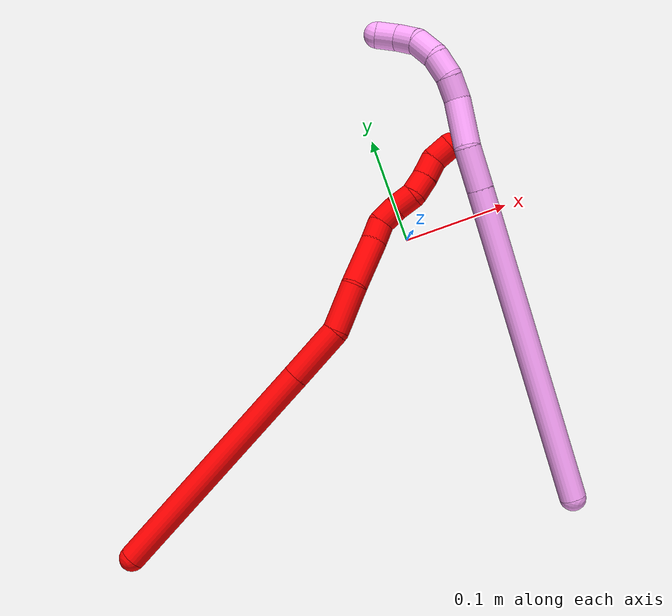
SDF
<sdf version="1.7">
 <world name="default">
  <model name="photoneo_s_sensor">
   <static>1</static>
   <pose>0 0 2 1.57079 1.57079 3.14159</pose>
   <link name="link">
    <inertial><mass>0.1</mass></inertial>
    <sensor name="sensor" type="depth">
     <update_rate>30</update_rate>
     <camera>
      <horizontal_fov>1.22</horizontal_fov>
      <image><width>1920</width><height>1200</height><format>B8G8R8</format></image>
      <clip><near>0.1</near><far>4</far></clip>
      <depth_camera><output>points</output></depth_camera>
     </camera>
     <plugin name="camera_plugin" filename="libgazebo_ros_depth_camera.so">
      <baseline>0.2</baseline>
      <alwaysOn>1</alwaysOn>
      <updateRate>0.0</updateRate>
      <cameraName>camera_ir</cameraName>
      <imageTopicName>/camera/color/image_raw</imageTopicName>
      <cameraInfoTopicName>/camera/color/camera_info</cameraInfoTopicName>
      <depthImageTopicName>/camera/depth/image_raw</depthImageTopicName>
      <depthImageCameraInfoTopicName>/camera/depth/camera_info</depthImageCameraInfoTopicName>
      <pointCloudTopicName>/camera/depth/points</pointCloudTopicName>
      <frameName>fr_optical</frameName>
      <pointCloudCutoff>0.1</pointCloudCutoff>
      <pointCloudCutoffMax>2.0</pointCloudCutoffMax>
      <distortionK1>0</distortionK1>
      <distortionK2>0</distortionK2>
      <distortionK3>0</distortionK3>
      <distortionT1>0</distortionT1>
      <distortionT2>0</distortionT2>
      <CxPrime>0</CxPrime>
      <Cx>0</Cx>
      <Cy>0</Cy>
      <focalLength>0</focalLength>
      <hackBaseline>0</hackBaseline>
     </plugin>
    </sensor>
   </link>
  </model>
  <model name="bin">
   <static>1</static>
   <link name="bottom">
    <collision name="collision-bottom">
     <pose>0 0 -0.01 0 -0 0</pose>
     <geometry><box><size>0.8 0.6 0.02</size></box></geometry>
     <surface>
      <friction><ode><mu>100</mu><mu2>100</mu2></ode></friction>
      <contact><collide_bitmask>65535</collide_bitmask></contact>
     </surface>
    </collision>
   </link>
   <link name="west_wall">
    <collision name="collision-west_wall">
     <pose>-0.41 0 0.1 0 -0 0</pose>
     <geometry><box><size>0.02 0.6 0.2</size></box></geometry>
     <surface>
      <friction><ode><mu>100</mu><mu2>100</mu2></ode></friction>
      <contact><collide_bitmask>65535</collide_bitmask></contact>
     </surface>
    </collision>
   </link>
   <link name="east_wall">
    <collision name="collision-east_wall">
     <pose>0.41 0 0.1 0 -0 0</pose>
     <geometry><box><size>0.02 0.6 0.2</size></box></geometry>
     <surface>
      <friction><ode><mu>100</mu><mu2>100</mu2></ode></friction>
      <contact><collide_bitmask>65535</collide_bitmask></contact>
     </surface>
    </collision>
   </link>
   <link name="south_wall">
    <collision name="collision-south_wall">
     <pose>0 -0.31 0.1 0 -0 0</pose>
     <geometry><box><size>0.8 0.02 0.2</size></box></geometry>
     <surface>
      <friction><ode><mu>100</mu><mu2>100</mu2></ode></friction>
      <contact><collide_bitmask>65535</collide_bitmask></contact>
     </surface>
    </collision>
   </link>
   <link name="north_wall">
    <collision name="collision-north_wall">
     <pose>0 0.31 0.1 0 -0 0</pose>
     <geometry><box><size>0.8 0.02 0.2</size></box></geometry>
     <surface>
      <friction><ode><mu>100</mu><mu2>100</mu2></ode></friction>
      <contact><collide_bitmask>65535</collide_bitmask></contact>
     </surface>
    </collision>
   </link>
  </model>
  <model name="2">
   <static>0</static>
   <link name="2">
    <collision name="collision-cylinder-e_1_1_4">
     <pose>0.070626 -0.000275 -0.09063 3.13856 0.66197 3.13278</pose>
     <geometry><cylinder><radius>0.0125</radius><length>0.229799</length></cylinder></geometry>
     <surface>
      <friction><ode><mu>1.16</mu><mu2>1.16</mu2><slip1>0</slip1><slip2>0</slip2></ode></friction>
      <contact><ode><kp>1e+06</kp><kd>1</kd><max_vel>0</max_vel><min_depth>0.001</min_depth></ode></contact>
     </surface>
    </collision>
    <visual name="visual-cylinder-e_1_1_4">
     <pose>0.070626 -0.000275 -0.09063 3.13856 0.66197 3.13278</pose>
     <geometry><cylinder><radius>0.0125</radius><length>0.229799</length></cylinder></geometry>
     <material><ambient>1 0 0 1</ambient></material>
    </visual>
    <collision name="collision-cylinder-e_2_4_5">
     <pose>0.158697 -0.000529 -0.203004 -3.14068 0.67618 -3.13899</pose>
     <geometry><cylinder><radius>0.0125</radius><length>0.055754</length></cylinder></geometry>
     <surface>
      <friction><ode><mu>1.16</mu><mu2>1.16</mu2><slip1>0</slip1><slip2>0</slip2></ode></friction>
      <contact><ode><kp>1e+06</kp><kd>1</kd><max_vel>0</max_vel><min_depth>0.001</min_depth></ode></contact>
     </surface>
    </collision>
    <visual name="visual-cylinder-e_2_4_5">
     <pose>0.158697 -0.000529 -0.203004 -3.14068 0.67618 -3.13899</pose>
     <geometry><cylinder><radius>0.0125</radius><length>0.055754</length></cylinder></geometry>
     <material><ambient>1 0 0 1</ambient></material>
    </visual>
    <collision name="collision-cylinder-e_3_5_6">
     <pose>0.188216 0.007845 -0.242435 -2.70031 0.552927 -1.80373</pose>
     <geometry><cylinder><radius>0.0125</radius><length>0.045974</length></cylinder></geometry>
     <surface>
      <friction><ode><mu>1.16</mu><mu2>1.16</mu2><slip1>0</slip1><slip2>0</slip2></ode></friction>
      <contact><ode><kp>1e+06</kp><kd>1</kd><max_vel>0</max_vel><min_depth>0.001</min_depth></ode></contact>
     </surface>
    </collision>
    <visual name="visual-cylinder-e_3_5_6">
     <pose>0.188216 0.007845 -0.242435 -2.70031 0.552927 -1.80373</pose>
     <geometry><cylinder><radius>0.0125</radius><length>0.045974</length></cylinder></geometry>
     <material><ambient>1 0 0 1</ambient></material>
    </visual>
    <collision name="collision-cylinder-e_4_6_7">
     <pose>0.207964 0.025138 -0.280882 -2.73503 0.32742 -1.35118</pose>
     <geometry><cylinder><radius>0.0125</radius><length>0.047737</length></cylinder></geometry>
     <surface>
      <friction><ode><mu>1.16</mu><mu2>1.16</mu2><slip1>0</slip1><slip2>0</slip2></ode></friction>
      <contact><ode><kp>1e+06</kp><kd>1</kd><max_vel>0</max_vel><min_depth>0.001</min_depth></ode></contact>
     </surface>
    </collision>
    <visual name="visual-cylinder-e_4_6_7">
     <pose>0.207964 0.025138 -0.280882 -2.73503 0.32742 -1.35118</pose>
     <geometry><cylinder><radius>0.0125</radius><length>0.047737</length></cylinder></geometry>
     <material><ambient>1 0 0 1</ambient></material>
    </visual>
    <collision name="collision-cylinder-e_5_7_8">
     <pose>0.219845 0.038069 -0.309854 -2.68902 0.431453 -1.52143</pose>
     <geometry><cylinder><radius>0.0125</radius><length>0.02011</length></cylinder></geometry>
     <surface>
      <friction><ode><mu>1.16</mu><mu2>1.16</mu2><slip1>0</slip1><slip2>0</slip2></ode></friction>
      <contact><ode><kp>1e+06</kp><kd>1</kd><max_vel>0</max_vel><min_depth>0.001</min_depth></ode></contact>
     </surface>
    </collision>
    <visual name="visual-cylinder-e_5_7_8">
     <pose>0.219845 0.038069 -0.309854 -2.68902 0.431453 -1.52143</pose>
     <geometry><cylinder><radius>0.0125</radius><length>0.02011</length></cylinder></geometry>
     <material><ambient>1 0 0 1</ambient></material>
    </visual>
    <collision name="collision-cylinder-e_6_8_9">
     <pose>0.229747 0.04158 -0.326336 3.08324 0.602531 2.95428</pose>
     <geometry><cylinder><radius>0.0125</radius><length>0.020104</length></cylinder></geometry>
     <surface>
      <friction><ode><mu>1.16</mu><mu2>1.16</mu2><slip1>0</slip1><slip2>0</slip2></ode></friction>
      <contact><ode><kp>1e+06</kp><kd>1</kd><max_vel>0</max_vel><min_depth>0.001</min_depth></ode></contact>
     </surface>
    </collision>
    <visual name="visual-cylinder-e_6_8_9">
     <pose>0.229747 0.04158 -0.326336 3.08324 0.602531 2.95428</pose>
     <geometry><cylinder><radius>0.0125</radius><length>0.020104</length></cylinder></geometry>
     <material><ambient>1 0 0 1</ambient></material>
    </visual>
    <collision name="collision-cylinder-e_7_9_10">
     <pose>0.241837 0.038913 -0.342268 2.86402 0.67609 2.38516</pose>
     <geometry><cylinder><radius>0.0125</radius><length>0.020433</length></cylinder></geometry>
     <surface>
      <friction><ode><mu>1.16</mu><mu2>1.16</mu2><slip1>0</slip1><slip2>0</slip2></ode></friction>
      <contact><ode><kp>1e+06</kp><kd>1</kd><max_vel>0</max_vel><min_depth>0.001</min_depth></ode></contact>
     </surface>
    </collision>
    <visual name="visual-cylinder-e_7_9_10">
     <pose>0.241837 0.038913 -0.342268 2.86402 0.67609 2.38516</pose>
     <geometry><cylinder><radius>0.0125</radius><length>0.020433</length></cylinder></geometry>
     <material><ambient>1 0 0 1</ambient></material>
    </visual>
    <collision name="collision-cylinder-e_8_10_11">
     <pose>0.252475 0.038766 -0.358791 -2.91566 0.436941 -2.19677</pose>
     <geometry><cylinder><radius>0.0125</radius><length>0.020065</length></cylinder></geometry>
     <surface>
      <friction><ode><mu>1.16</mu><mu2>1.16</mu2><slip1>0</slip1><slip2>0</slip2></ode></friction>
      <contact><ode><kp>1e+06</kp><kd>1</kd><max_vel>0</max_vel><min_depth>0.001</min_depth></ode></contact>
     </surface>
    </collision>
    <visual name="visual-cylinder-e_8_10_11">
     <pose>0.252475 0.038766 -0.358791 -2.91566 0.436941 -2.19677</pose>
     <geometry><cylinder><radius>0.0125</radius><length>0.020065</length></cylinder></geometry>
     <material><ambient>1 0 0 1</ambient></material>
    </visual>
    <collision name="collision-cylinder-e_9_11_12">
     <pose>0.26147 0.043788 -0.375937 -2.79582 0.494563 -1.93125</pose>
     <geometry><cylinder><radius>0.0125</radius><length>0.020015</length></cylinder></geometry>
     <surface>
      <friction><ode><mu>1.16</mu><mu2>1.16</mu2><slip1>0</slip1><slip2>0</slip2></ode></friction>
      <contact><ode><kp>1e+06</kp><kd>1</kd><max_vel>0</max_vel><min_depth>0.001</min_depth></ode></contact>
     </surface>
    </collision>
    <visual name="visual-cylinder-e_9_11_12">
     <pose>0.26147 0.043788 -0.375937 -2.79582 0.494563 -1.93125</pose>
     <geometry><cylinder><radius>0.0125</radius><length>0.020015</length></cylinder></geometry>
     <material><ambient>1 0 0 1</ambient></material>
    </visual>
    <collision name="collision-cylinder-e_10_12_2">
     <pose>0.272372 0.045382 -0.391989 2.9643 0.662298 2.63565</pose>
     <geometry><cylinder><radius>0.0125</radius><length>0.020008</length></cylinder></geometry>
     <surface>
      <friction><ode><mu>1.16</mu><mu2>1.16</mu2><slip1>0</slip1><slip2>0</slip2></ode></friction>
      <contact><ode><kp>1e+06</kp><kd>1</kd><max_vel>0</max_vel><min_depth>0.001</min_depth></ode></contact>
     </surface>
    </collision>
    <visual name="visual-cylinder-e_10_12_2">
     <pose>0.272372 0.045382 -0.391989 2.9643 0.662298 2.63565</pose>
     <geometry><cylinder><radius>0.0125</radius><length>0.020008</length></cylinder></geometry>
     <material><ambient>1 0 0 1</ambient></material>
    </visual>
    <collision name="collision-sphere-2">
     <pose>0.278524 0.04399 -0.399754 0 -0 0</pose>
     <geometry><sphere><radius>0.0125</radius></sphere></geometry>
     <surface>
      <friction><ode><mu>1.16</mu><mu2>1.16</mu2><slip1>0</slip1><slip2>0</slip2></ode></friction>
      <contact><ode><kp>1e+06</kp><kd>1</kd><max_vel>0</max_vel><min_depth>0.001</min_depth></ode></contact>
     </surface>
    </collision>
    <visual name="visual-sphere-2">
     <pose>0.278524 0.04399 -0.399754 0 -0 0</pose>
     <geometry><sphere><radius>0.0125</radius></sphere></geometry>
     <material><ambient>1 0 0 1</ambient></material>
    </visual>
    <collision name="collision-sphere-12">
     <pose>0.26622 0.046773 -0.384224 0 -0 0</pose>
     <geometry><sphere><radius>0.0125</radius></sphere></geometry>
     <surface>
      <friction><ode><mu>1.16</mu><mu2>1.16</mu2><slip1>0</slip1><slip2>0</slip2></ode></friction>
      <contact><ode><kp>1e+06</kp><kd>1</kd><max_vel>0</max_vel><min_depth>0.001</min_depth></ode></contact>
     </surface>
    </collision>
    <visual name="visual-sphere-12">
     <pose>0.26622 0.046773 -0.384224 0 -0 0</pose>
     <geometry><sphere><radius>0.0125</radius></sphere></geometry>
     <material><ambient>1 0 0 1</ambient></material>
    </visual>
    <collision name="collision-sphere-11">
     <pose>0.25672 0.040802 -0.36765 0 -0 0</pose>
     <geometry><sphere><radius>0.0125</radius></sphere></geometry>
     <surface>
      <friction><ode><mu>1.16</mu><mu2>1.16</mu2><slip1>0</slip1><slip2>0</slip2></ode></friction>
      <contact><ode><kp>1e+06</kp><kd>1</kd><max_vel>0</max_vel><min_depth>0.001</min_depth></ode></contact>
     </surface>
    </collision>
    <visual name="visual-sphere-11">
     <pose>0.25672 0.040802 -0.36765 0 -0 0</pose>
     <geometry><sphere><radius>0.0125</radius></sphere></geometry>
     <material><ambient>1 0 0 1</ambient></material>
    </visual>
    <collision name="collision-sphere-10">
     <pose>0.24823 0.03673 -0.349932 0 -0 0</pose>
     <geometry><sphere><radius>0.0125</radius></sphere></geometry>
     <surface>
      <friction><ode><mu>1.16</mu><mu2>1.16</mu2><slip1>0</slip1><slip2>0</slip2></ode></friction>
      <contact><ode><kp>1e+06</kp><kd>1</kd><max_vel>0</max_vel><min_depth>0.001</min_depth></ode></contact>
     </surface>
    </collision>
    <visual name="visual-sphere-10">
     <pose>0.24823 0.03673 -0.349932 0 -0 0</pose>
     <geometry><sphere><radius>0.0125</radius></sphere></geometry>
     <material><ambient>1 0 0 1</ambient></material>
    </visual>
    <collision name="collision-sphere-9">
     <pose>0.235444 0.041097 -0.334604 0 -0 0</pose>
     <geometry><sphere><radius>0.0125</radius></sphere></geometry>
     <surface>
      <friction><ode><mu>1.16</mu><mu2>1.16</mu2><slip1>0</slip1><slip2>0</slip2></ode></friction>
      <contact><ode><kp>1e+06</kp><kd>1</kd><max_vel>0</max_vel><min_depth>0.001</min_depth></ode></contact>
     </surface>
    </collision>
    <visual name="visual-sphere-9">
     <pose>0.235444 0.041097 -0.334604 0 -0 0</pose>
     <geometry><sphere><radius>0.0125</radius></sphere></geometry>
     <material><ambient>1 0 0 1</ambient></material>
    </visual>
    <collision name="collision-sphere-4">
     <pose>0.141251 -0.000549 -0.181261 0 -0 0</pose>
     <geometry><sphere><radius>0.0125</radius></sphere></geometry>
     <surface>
      <friction><ode><mu>1.16</mu><mu2>1.16</mu2><slip1>0</slip1><slip2>0</slip2></ode></friction>
      <contact><ode><kp>1e+06</kp><kd>1</kd><max_vel>0</max_vel><min_depth>0.001</min_depth></ode></contact>
     </surface>
    </collision>
    <visual name="visual-sphere-4">
     <pose>0.141251 -0.000549 -0.181261 0 -0 0</pose>
     <geometry><sphere><radius>0.0125</radius></sphere></geometry>
     <material><ambient>1 0 0 1</ambient></material>
    </visual>
    <collision name="collision-sphere-1">
     <geometry><sphere><radius>0.0125</radius></sphere></geometry>
     <surface>
      <friction><ode><mu>1.16</mu><mu2>1.16</mu2><slip1>0</slip1><slip2>0</slip2></ode></friction>
      <contact><ode><kp>1e+06</kp><kd>1</kd><max_vel>0</max_vel><min_depth>0.001</min_depth></ode></contact>
     </surface>
    </collision>
    <visual name="visual-sphere-1">
     <geometry><sphere><radius>0.0125</radius></sphere></geometry>
     <material><ambient>1 0 0 1</ambient></material>
    </visual>
    <collision name="collision-sphere-8">
     <pose>0.22405 0.042063 -0.318068 0 -0 0</pose>
     <geometry><sphere><radius>0.0125</radius></sphere></geometry>
     <surface>
      <friction><ode><mu>1.16</mu><mu2>1.16</mu2><slip1>0</slip1><slip2>0</slip2></ode></friction>
      <contact><ode><kp>1e+06</kp><kd>1</kd><max_vel>0</max_vel><min_depth>0.001</min_depth></ode></contact>
     </surface>
    </collision>
    <visual name="visual-sphere-8">
     <pose>0.22405 0.042063 -0.318068 0 -0 0</pose>
     <geometry><sphere><radius>0.0125</radius></sphere></geometry>
     <material><ambient>1 0 0 1</ambient></material>
    </visual>
    <collision name="collision-sphere-5">
     <pose>0.176143 -0.000509 -0.224747 0 -0 0</pose>
     <geometry><sphere><radius>0.0125</radius></sphere></geometry>
     <surface>
      <friction><ode><mu>1.16</mu><mu2>1.16</mu2><slip1>0</slip1><slip2>0</slip2></ode></friction>
      <contact><ode><kp>1e+06</kp><kd>1</kd><max_vel>0</max_vel><min_depth>0.001</min_depth></ode></contact>
     </surface>
    </collision>
    <visual name="visual-sphere-5">
     <pose>0.176143 -0.000509 -0.224747 0 -0 0</pose>
     <geometry><sphere><radius>0.0125</radius></sphere></geometry>
     <material><ambient>1 0 0 1</ambient></material>
    </visual>
    <collision name="collision-sphere-6">
     <pose>0.200288 0.0162 -0.260123 0 -0 0</pose>
     <geometry><sphere><radius>0.0125</radius></sphere></geometry>
     <surface>
      <friction><ode><mu>1.16</mu><mu2>1.16</mu2><slip1>0</slip1><slip2>0</slip2></ode></friction>
      <contact><ode><kp>1e+06</kp><kd>1</kd><max_vel>0</max_vel><min_depth>0.001</min_depth></ode></contact>
     </surface>
    </collision>
    <visual name="visual-sphere-6">
     <pose>0.200288 0.0162 -0.260123 0 -0 0</pose>
     <geometry><sphere><radius>0.0125</radius></sphere></geometry>
     <material><ambient>1 0 0 1</ambient></material>
    </visual>
    <collision name="collision-sphere-7">
     <pose>0.21564 0.034075 -0.30164 0 -0 0</pose>
     <geometry><sphere><radius>0.0125</radius></sphere></geometry>
     <surface>
      <friction><ode><mu>1.16</mu><mu2>1.16</mu2><slip1>0</slip1><slip2>0</slip2></ode></friction>
      <contact><ode><kp>1e+06</kp><kd>1</kd><max_vel>0</max_vel><min_depth>0.001</min_depth></ode></contact>
     </surface>
    </collision>
    <visual name="visual-sphere-7">
     <pose>0.21564 0.034075 -0.30164 0 -0 0</pose>
     <geometry><sphere><radius>0.0125</radius></sphere></geometry>
     <material><ambient>1 0 0 1</ambient></material>
    </visual>
    <inertial>
     <pose>0.146777 0.012854 -0.198102 0 -0 0</pose>
     <mass>0.5</mass>
     <inertia>
      <ixx>-0.000813</ixx>
      <ixy>0</ixy>
      <ixz>0</ixz>
      <iyy>0.001036</iyy>
      <iyz>0</iyz>
      <izz>-0.000688</izz>
     </inertia>
    </inertial>
   </link>
   <pose>-0.343179 -0.196593 0.011497 -0.415401 -0.948417 0.825891</pose>
  </model>
  <model name="4">
   <static>0</static>
   <link name="4">
    <collision name="collision-cylinder-e_1_1_4">
     <pose>0.019235 0.121308 -0.08758 -2.19611 0.127857 -0.249051</pose>
     <geometry><cylinder><radius>0.0125</radius><length>0.3017</length></cylinder></geometry>
     <surface>
      <friction><ode><mu>1.16</mu><mu2>1.16</mu2><slip1>0</slip1><slip2>0</slip2></ode></friction>
      <contact><ode><kp>1e+06</kp><kd>1</kd><max_vel>0</max_vel><min_depth>0.001</min_depth></ode></contact>
     </surface>
    </collision>
    <visual name="visual-cylinder-e_1_1_4">
     <pose>0.019235 0.121308 -0.08758 -2.19611 0.127857 -0.249051</pose>
     <geometry><cylinder><radius>0.0125</radius><length>0.3017</length></cylinder></geometry>
     <material><ambient>1 0.65098 0.996078 1</ambient></material>
    </visual>
    <collision name="collision-cylinder-e_2_4_5">
     <pose>0.040864 0.258743 -0.186797 -2.19585 0.119825 -0.233438</pose>
     <geometry><cylinder><radius>0.0125</radius><length>0.040064</length></cylinder></geometry>
     <surface>
      <friction><ode><mu>1.16</mu><mu2>1.16</mu2><slip1>0</slip1><slip2>0</slip2></ode></friction>
      <contact><ode><kp>1e+06</kp><kd>1</kd><max_vel>0</max_vel><min_depth>0.001</min_depth></ode></contact>
     </surface>
    </collision>
    <visual name="visual-cylinder-e_2_4_5">
     <pose>0.040864 0.258743 -0.186797 -2.19585 0.119825 -0.233438</pose>
     <geometry><cylinder><radius>0.0125</radius><length>0.040064</length></cylinder></geometry>
     <material><ambient>1 0.65098 0.996078 1</ambient></material>
    </visual>
    <collision name="collision-cylinder-e_3_5_6">
     <pose>0.051434 0.290656 -0.212766 -2.30798 0.366149 -0.792156</pose>
     <geometry><cylinder><radius>0.0125</radius><length>0.045667</length></cylinder></geometry>
     <surface>
      <friction><ode><mu>1.16</mu><mu2>1.16</mu2><slip1>0</slip1><slip2>0</slip2></ode></friction>
      <contact><ode><kp>1e+06</kp><kd>1</kd><max_vel>0</max_vel><min_depth>0.001</min_depth></ode></contact>
     </surface>
    </collision>
    <visual name="visual-cylinder-e_3_5_6">
     <pose>0.051434 0.290656 -0.212766 -2.30798 0.366149 -0.792156</pose>
     <geometry><cylinder><radius>0.0125</radius><length>0.045667</length></cylinder></geometry>
     <material><ambient>1 0.65098 0.996078 1</ambient></material>
    </visual>
    <collision name="collision-cylinder-e_4_6_7">
     <pose>0.060134 0.315588 -0.233791 -2.20253 0.046334 -0.091273</pose>
     <geometry><cylinder><radius>0.0125</radius><length>0.022695</length></cylinder></geometry>
     <surface>
      <friction><ode><mu>1.16</mu><mu2>1.16</mu2><slip1>0</slip1><slip2>0</slip2></ode></friction>
      <contact><ode><kp>1e+06</kp><kd>1</kd><max_vel>0</max_vel><min_depth>0.001</min_depth></ode></contact>
     </surface>
    </collision>
    <visual name="visual-cylinder-e_4_6_7">
     <pose>0.060134 0.315588 -0.233791 -2.20253 0.046334 -0.091273</pose>
     <geometry><cylinder><radius>0.0125</radius><length>0.022695</length></cylinder></geometry>
     <material><ambient>1 0.65098 0.996078 1</ambient></material>
    </visual>
    <collision name="collision-cylinder-e_5_7_8">
     <pose>0.061446 0.331208 -0.249737 -2.53113 0.069579 -0.220029</pose>
     <geometry><cylinder><radius>0.0125</radius><length>0.022637</length></cylinder></geometry>
     <surface>
      <friction><ode><mu>1.16</mu><mu2>1.16</mu2><slip1>0</slip1><slip2>0</slip2></ode></friction>
      <contact><ode><kp>1e+06</kp><kd>1</kd><max_vel>0</max_vel><min_depth>0.001</min_depth></ode></contact>
     </surface>
    </collision>
    <visual name="visual-cylinder-e_5_7_8">
     <pose>0.061446 0.331208 -0.249737 -2.53113 0.069579 -0.220029</pose>
     <geometry><cylinder><radius>0.0125</radius><length>0.022637</length></cylinder></geometry>
     <material><ambient>1 0.65098 0.996078 1</ambient></material>
    </visual>
    <collision name="collision-cylinder-e_6_8_9">
     <pose>0.063132 0.340544 -0.270631 -2.9005 0.07485 -0.599559</pose>
     <geometry><cylinder><radius>0.0125</radius><length>0.024045</length></cylinder></geometry>
     <surface>
      <friction><ode><mu>1.16</mu><mu2>1.16</mu2><slip1>0</slip1><slip2>0</slip2></ode></friction>
      <contact><ode><kp>1e+06</kp><kd>1</kd><max_vel>0</max_vel><min_depth>0.001</min_depth></ode></contact>
     </surface>
    </collision>
    <visual name="visual-cylinder-e_6_8_9">
     <pose>0.063132 0.340544 -0.270631 -2.9005 0.07485 -0.599559</pose>
     <geometry><cylinder><radius>0.0125</radius><length>0.024045</length></cylinder></geometry>
     <material><ambient>1 0.65098 0.996078 1</ambient></material>
    </visual>
    <collision name="collision-cylinder-e_7_9_10">
     <pose>0.063745 0.3417 -0.29353 2.99114 -0.025116 -0.330219</pose>
     <geometry><cylinder><radius>0.0125</radius><length>0.022777</length></cylinder></geometry>
     <surface>
      <friction><ode><mu>1.16</mu><mu2>1.16</mu2><slip1>0</slip1><slip2>0</slip2></ode></friction>
      <contact><ode><kp>1e+06</kp><kd>1</kd><max_vel>0</max_vel><min_depth>0.001</min_depth></ode></contact>
     </surface>
    </collision>
    <visual name="visual-cylinder-e_7_9_10">
     <pose>0.063745 0.3417 -0.29353 2.99114 -0.025116 -0.330219</pose>
     <geometry><cylinder><radius>0.0125</radius><length>0.022777</length></cylinder></geometry>
     <material><ambient>1 0.65098 0.996078 1</ambient></material>
    </visual>
    <collision name="collision-cylinder-e_8_10_2">
     <pose>0.058748 0.339653 -0.313835 3.10405 -0.479751 -2.9884</pose>
     <geometry><cylinder><radius>0.0125</radius><length>0.020415</length></cylinder></geometry>
     <surface>
      <friction><ode><mu>1.16</mu><mu2>1.16</mu2><slip1>0</slip1><slip2>0</slip2></ode></friction>
      <contact><ode><kp>1e+06</kp><kd>1</kd><max_vel>0</max_vel><min_depth>0.001</min_depth></ode></contact>
     </surface>
    </collision>
    <visual name="visual-cylinder-e_8_10_2">
     <pose>0.058748 0.339653 -0.313835 3.10405 -0.479751 -2.9884</pose>
     <geometry><cylinder><radius>0.0125</radius><length>0.020415</length></cylinder></geometry>
     <material><ambient>1 0.65098 0.996078 1</ambient></material>
    </visual>
    <collision name="collision-sphere-2">
     <pose>0.054037 0.339313 -0.322883 0 -0 0</pose>
     <geometry><sphere><radius>0.0125</radius></sphere></geometry>
     <surface>
      <friction><ode><mu>1.16</mu><mu2>1.16</mu2><slip1>0</slip1><slip2>0</slip2></ode></friction>
      <contact><ode><kp>1e+06</kp><kd>1</kd><max_vel>0</max_vel><min_depth>0.001</min_depth></ode></contact>
     </surface>
    </collision>
    <visual name="visual-sphere-2">
     <pose>0.054037 0.339313 -0.322883 0 -0 0</pose>
     <geometry><sphere><radius>0.0125</radius></sphere></geometry>
     <material><ambient>1 0.65098 0.996078 1</ambient></material>
    </visual>
    <collision name="collision-sphere-10">
     <pose>0.063459 0.339993 -0.304786 0 -0 0</pose>
     <geometry><sphere><radius>0.0125</radius></sphere></geometry>
     <surface>
      <friction><ode><mu>1.16</mu><mu2>1.16</mu2><slip1>0</slip1><slip2>0</slip2></ode></friction>
      <contact><ode><kp>1e+06</kp><kd>1</kd><max_vel>0</max_vel><min_depth>0.001</min_depth></ode></contact>
     </surface>
    </collision>
    <visual name="visual-sphere-10">
     <pose>0.063459 0.339993 -0.304786 0 -0 0</pose>
     <geometry><sphere><radius>0.0125</radius></sphere></geometry>
     <material><ambient>1 0.65098 0.996078 1</ambient></material>
    </visual>
    <collision name="collision-sphere-9">
     <pose>0.064031 0.343406 -0.282273 0 -0 0</pose>
     <geometry><sphere><radius>0.0125</radius></sphere></geometry>
     <surface>
      <friction><ode><mu>1.16</mu><mu2>1.16</mu2><slip1>0</slip1><slip2>0</slip2></ode></friction>
      <contact><ode><kp>1e+06</kp><kd>1</kd><max_vel>0</max_vel><min_depth>0.001</min_depth></ode></contact>
     </surface>
    </collision>
    <visual name="visual-sphere-9">
     <pose>0.064031 0.343406 -0.282273 0 -0 0</pose>
     <geometry><sphere><radius>0.0125</radius></sphere></geometry>
     <material><ambient>1 0.65098 0.996078 1</ambient></material>
    </visual>
    <collision name="collision-sphere-4">
     <pose>0.03847 0.242615 -0.17516 0 -0 0</pose>
     <geometry><sphere><radius>0.0125</radius></sphere></geometry>
     <surface>
      <friction><ode><mu>1.16</mu><mu2>1.16</mu2><slip1>0</slip1><slip2>0</slip2></ode></friction>
      <contact><ode><kp>1e+06</kp><kd>1</kd><max_vel>0</max_vel><min_depth>0.001</min_depth></ode></contact>
     </surface>
    </collision>
    <visual name="visual-sphere-4">
     <pose>0.03847 0.242615 -0.17516 0 -0 0</pose>
     <geometry><sphere><radius>0.0125</radius></sphere></geometry>
     <material><ambient>1 0.65098 0.996078 1</ambient></material>
    </visual>
    <collision name="collision-sphere-1">
     <geometry><sphere><radius>0.0125</radius></sphere></geometry>
     <surface>
      <friction><ode><mu>1.16</mu><mu2>1.16</mu2><slip1>0</slip1><slip2>0</slip2></ode></friction>
      <contact><ode><kp>1e+06</kp><kd>1</kd><max_vel>0</max_vel><min_depth>0.001</min_depth></ode></contact>
     </surface>
    </collision>
    <visual name="visual-sphere-1">
     <geometry><sphere><radius>0.0125</radius></sphere></geometry>
     <material><ambient>1 0.65098 0.996078 1</ambient></material>
    </visual>
    <collision name="collision-sphere-8">
     <pose>0.062233 0.337681 -0.258989 0 -0 0</pose>
     <geometry><sphere><radius>0.0125</radius></sphere></geometry>
     <surface>
      <friction><ode><mu>1.16</mu><mu2>1.16</mu2><slip1>0</slip1><slip2>0</slip2></ode></friction>
      <contact><ode><kp>1e+06</kp><kd>1</kd><max_vel>0</max_vel><min_depth>0.001</min_depth></ode></contact>
     </surface>
    </collision>
    <visual name="visual-sphere-8">
     <pose>0.062233 0.337681 -0.258989 0 -0 0</pose>
     <geometry><sphere><radius>0.0125</radius></sphere></geometry>
     <material><ambient>1 0.65098 0.996078 1</ambient></material>
    </visual>
    <collision name="collision-sphere-5">
     <pose>0.043259 0.274871 -0.198435 0 -0 0</pose>
     <geometry><sphere><radius>0.0125</radius></sphere></geometry>
     <surface>
      <friction><ode><mu>1.16</mu><mu2>1.16</mu2><slip1>0</slip1><slip2>0</slip2></ode></friction>
      <contact><ode><kp>1e+06</kp><kd>1</kd><max_vel>0</max_vel><min_depth>0.001</min_depth></ode></contact>
     </surface>
    </collision>
    <visual name="visual-sphere-5">
     <pose>0.043259 0.274871 -0.198435 0 -0 0</pose>
     <geometry><sphere><radius>0.0125</radius></sphere></geometry>
     <material><ambient>1 0.65098 0.996078 1</ambient></material>
    </visual>
    <collision name="collision-sphere-6">
     <pose>0.059608 0.30644 -0.227097 0 -0 0</pose>
     <geometry><sphere><radius>0.0125</radius></sphere></geometry>
     <surface>
      <friction><ode><mu>1.16</mu><mu2>1.16</mu2><slip1>0</slip1><slip2>0</slip2></ode></friction>
      <contact><ode><kp>1e+06</kp><kd>1</kd><max_vel>0</max_vel><min_depth>0.001</min_depth></ode></contact>
     </surface>
    </collision>
    <visual name="visual-sphere-6">
     <pose>0.059608 0.30644 -0.227097 0 -0 0</pose>
     <geometry><sphere><radius>0.0125</radius></sphere></geometry>
     <material><ambient>1 0.65098 0.996078 1</ambient></material>
    </visual>
    <collision name="collision-sphere-7">
     <pose>0.06066 0.324736 -0.240485 0 -0 0</pose>
     <geometry><sphere><radius>0.0125</radius></sphere></geometry>
     <surface>
      <friction><ode><mu>1.16</mu><mu2>1.16</mu2><slip1>0</slip1><slip2>0</slip2></ode></friction>
      <contact><ode><kp>1e+06</kp><kd>1</kd><max_vel>0</max_vel><min_depth>0.001</min_depth></ode></contact>
     </surface>
    </collision>
    <visual name="visual-sphere-7">
     <pose>0.06066 0.324736 -0.240485 0 -0 0</pose>
     <geometry><sphere><radius>0.0125</radius></sphere></geometry>
     <material><ambient>1 0.65098 0.996078 1</ambient></material>
    </visual>
    <inertial>
     <pose>0.033428 0.195607 -0.148365 0 -0 0</pose>
     <mass>0.5</mass>
     <inertia>
      <ixx>0.001661</ixx>
      <ixy>0</ixy>
      <ixz>0</ixz>
      <iyy>-0.001804</iyy>
      <iyz>0</iyz>
      <izz>-0.002187</izz>
     </inertia>
    </inertial>
   </link>
   <pose>0.064769 -0.28085 0.011498 0.89453 0.653516 0.234293</pose>
  </model>
 </world>
</sdf>
